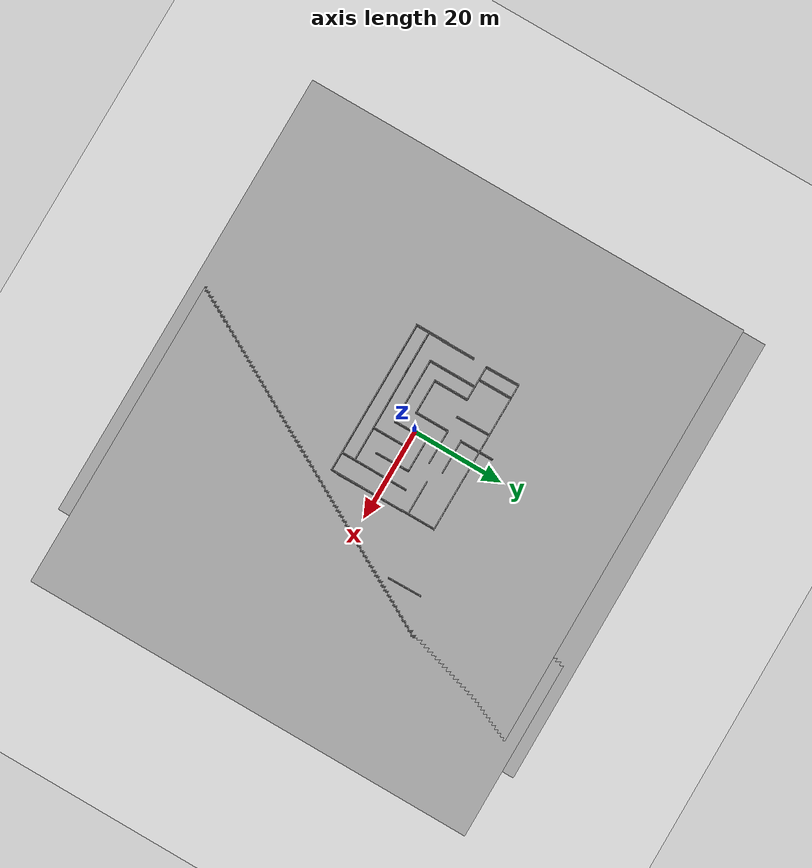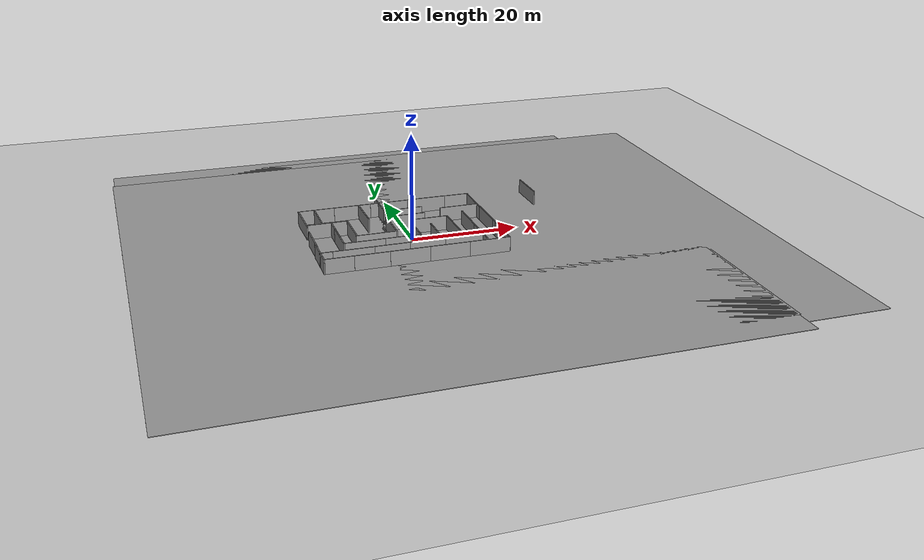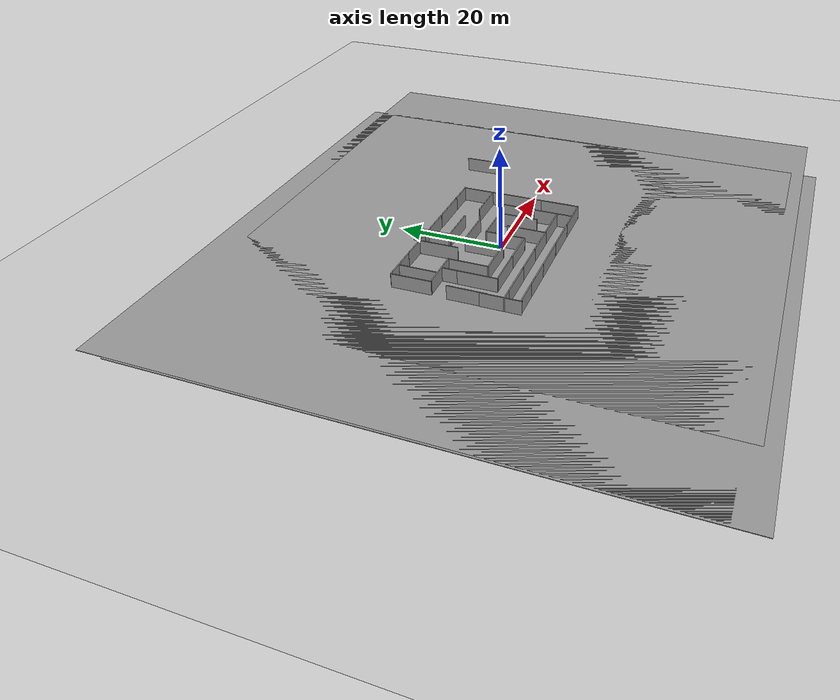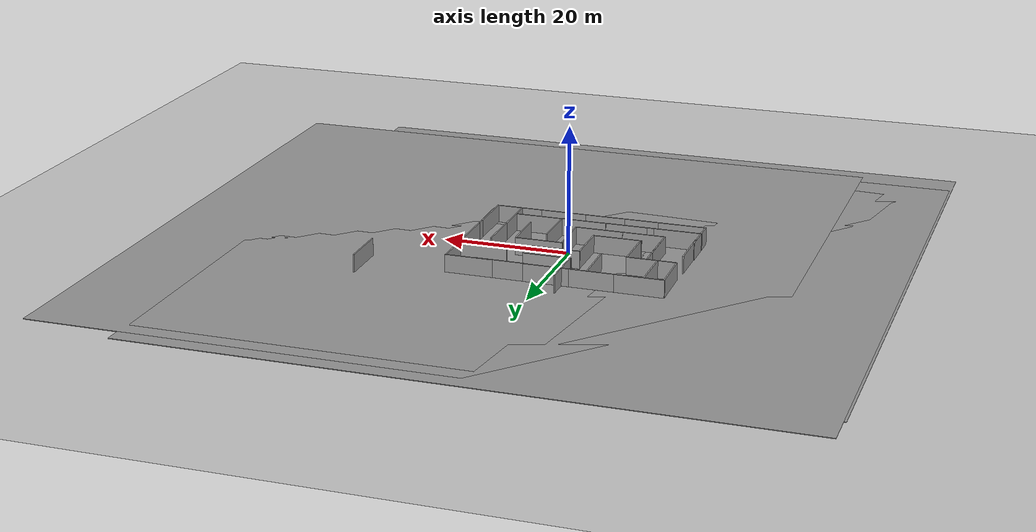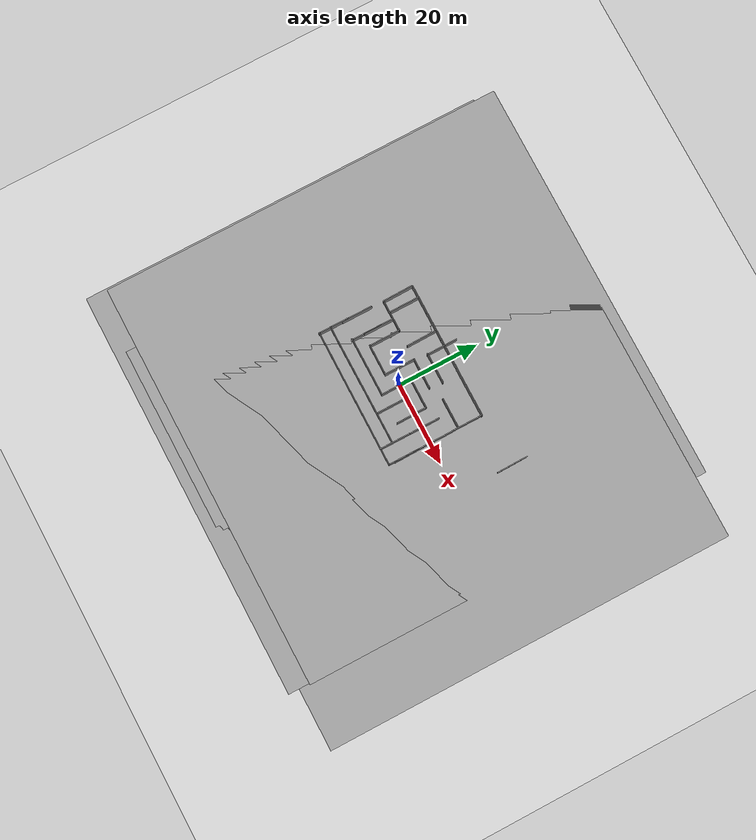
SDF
<sdf version="1.7">
 <world name="default">
  <light name="sun" type="directional">
   <pose>0 0 10 0 -0 0</pose>
   <diffuse>0.8 0.8 0.8 1</diffuse>
   <specular>0.2 0.2 0.2 1</specular>
   <attenuation>
    <range>1000</range>
    <constant>0.9</constant>
    <linear>0.01</linear>
    <quadratic>0.001</quadratic>
   </attenuation>
   <direction>-0.5 0.1 -0.9</direction>
   <spot><inner_angle>0</inner_angle><outer_angle>0</outer_angle><falloff>0</falloff></spot>
  </light>
  <model name="ground_plane">
   <static>1</static>
   <link name="link">
    <collision name="collision">
     <geometry><plane><normal>0 0 1</normal><size>100 100</size></plane></geometry>
     <surface><friction><ode><mu>100</mu><mu2>50</mu2></ode></friction></surface>
    </collision>
    <visual name="visual">
     <cast_shadows>0</cast_shadows>
     <geometry><plane><normal>0 0 1</normal><size>100 100</size></plane></geometry>
     <material>
      <script><uri>file://media/materials/scripts/gazebo.material</uri><name>Gazebo/Grey</name></script>
     </material>
    </visual>
   </link>
  </model>
  <physics name="default_physics" default="0" type="ode">
   <ode>
    <solver>
     <type>quick</type>
     <iters>10</iters>
     <sor>1.3</sor>
     <use_dynamic_moi_rescaling>0</use_dynamic_moi_rescaling>
    </solver>
    <constraints>
     <cfm>0</cfm>
     <erp>0.2</erp>
     <contact_max_correcting_vel>100</contact_max_correcting_vel>
     <contact_surface_layer>0.001</contact_surface_layer>
    </constraints>
   </ode>
   <max_step_size>0.004</max_step_size>
   <real_time_factor>1</real_time_factor>
   <real_time_update_rate>250</real_time_update_rate>
  </physics>
  <model name="grey_wall">
   <static>1</static>
   <link name="link">
    <pose>0 0 1.4 0 -0 0</pose>
    <collision name="collision"><geometry><box><size>7.5 0.2 2.8</size></box></geometry></collision>
    <visual name="visual">
     <cast_shadows>0</cast_shadows>
     <geometry><box><size>7.5 0.2 2.8</size></box></geometry>
     <material>
      <script>
       <uri>model://grey_wall/materials/scripts</uri>
       <uri>model://grey_wall/materials/textures</uri>
       <name>vrc/grey_wall</name>
      </script>
     </material>
    </visual>
   </link>
   <pose>14.9551 2.05959 0 0 0 -1.57</pose>
  </model>
  <model name="grey_wall2">
   <static>1</static>
   <link name="link">
    <pose>0 0 1.4 0 -0 0</pose>
    <collision name="collision"><geometry><box><size>7.5 0.2 2.8</size></box></geometry></collision>
    <visual name="visual">
     <cast_shadows>0</cast_shadows>
     <geometry><box><size>7.5 0.2 2.8</size></box></geometry>
     <material>
      <script>
       <uri>model://grey_wall/materials/scripts</uri>
       <uri>model://grey_wall/materials/textures</uri>
       <name>vrc/grey_wall</name>
      </script>
     </material>
    </visual>
   </link>
   <pose>-7.8442 13.1925 0 0 -0 0</pose>
  </model>
  <gravity>0 0 -9.8066</gravity>
  <magnetic_field>6e-06 2.3e-05 -4.2e-05</magnetic_field>
  <atmosphere type="adiabatic"/>
  <scene><ambient>0.4 0.4 0.4 1</ambient><background>0.7 0.7 0.7 1</background><shadows>1</shadows></scene>
  <audio><device>default</device></audio>
  <spherical_coordinates>
   <surface_model>EARTH_WGS84</surface_model>
   <latitude_deg>0</latitude_deg>
   <longitude_deg>0</longitude_deg>
   <elevation>0</elevation>
   <heading_deg>0</heading_deg>
  </spherical_coordinates>
  <model name="ground_plane_0">
   <static>1</static>
   <link name="link">
    <collision name="collision">
     <geometry><plane><normal>0 0 1</normal><size>100 100</size></plane></geometry>
     <surface><friction><ode><mu>100</mu><mu2>50</mu2></ode></friction></surface>
    </collision>
    <visual name="visual">
     <cast_shadows>0</cast_shadows>
     <geometry><plane><normal>0 0 1</normal><size>100 100</size></plane></geometry>
     <material>
      <script><uri>file://media/materials/scripts/gazebo.material</uri><name>Gazebo/Grey</name></script>
     </material>
    </visual>
   </link>
   <pose>-0.464511 1.60165 0 0 -0 0</pose>
  </model>
  <model name="grey_wall_1">
   <static>1</static>
   <link name="link">
    <pose>0 0 1.4 0 -0 0</pose>
    <collision name="collision"><geometry><box><size>7.5 0.2 2.8</size></box></geometry></collision>
    <visual name="visual">
     <cast_shadows>0</cast_shadows>
     <geometry><box><size>7.5 0.2 2.8</size></box></geometry>
     <material>
      <script>
       <uri>model://grey_wall/materials/scripts</uri>
       <uri>model://grey_wall/materials/textures</uri>
       <name>vrc/grey_wall</name>
      </script>
     </material>
    </visual>
   </link>
   <pose>0.28063 5.66889 0.02117 0 -0 0</pose>
  </model>
  <model name="ground_plane_1">
   <static>1</static>
   <link name="link">
    <collision name="collision">
     <geometry><plane><normal>0 0 1</normal><size>100 100</size></plane></geometry>
     <surface><friction><ode><mu>100</mu><mu2>50</mu2></ode></friction></surface>
    </collision>
    <visual name="visual">
     <cast_shadows>0</cast_shadows>
     <geometry><plane><normal>0 0 1</normal><size>100 100</size></plane></geometry>
     <material>
      <script><uri>file://media/materials/scripts/gazebo.material</uri><name>Gazebo/Grey</name></script>
     </material>
    </visual>
   </link>
   <pose>-0.823568 -3.4952 0 0 -0 0</pose>
  </model>
  <model name="grey_wall_0">
   <static>1</static>
   <link name="link">
    <pose>0 0 1.4 0 -0 0</pose>
    <collision name="collision"><geometry><box><size>7.5 0.2 2.8</size></box></geometry></collision>
    <visual name="visual">
     <cast_shadows>0</cast_shadows>
     <geometry><box><size>7.5 0.2 2.8</size></box></geometry>
     <material>
      <script>
       <uri>model://grey_wall/materials/scripts</uri>
       <uri>model://grey_wall/materials/textures</uri>
       <name>vrc/grey_wall</name>
      </script>
     </material>
    </visual>
   </link>
   <pose>-18.3431 9.47425 0 0 0 -1.5556</pose>
  </model>
  <model name="grey_wall_clone">
   <static>1</static>
   <link name="link">
    <pose>0 0 1.4 0 -0 0</pose>
    <collision name="collision"><geometry><box><size>7.5 0.2 2.8</size></box></geometry></collision>
    <visual name="visual">
     <cast_shadows>0</cast_shadows>
     <geometry><box><size>7.5 0.2 2.8</size></box></geometry>
     <material>
      <script>
       <uri>model://grey_wall/materials/scripts</uri>
       <uri>model://grey_wall/materials/textures</uri>
       <name>vrc/grey_wall</name>
      </script>
     </material>
    </visual>
   </link>
   <pose>3.51845 -3.70048 0 0 0 -1.57</pose>
  </model>
  <model name="grey_wall_clone_0">
   <static>1</static>
   <link name="link">
    <pose>0 0 1.4 0 -0 0</pose>
    <collision name="collision"><geometry><box><size>7.5 0.2 2.8</size></box></geometry></collision>
    <visual name="visual">
     <cast_shadows>0</cast_shadows>
     <geometry><box><size>7.5 0.2 2.8</size></box></geometry>
     <material>
      <script>
       <uri>model://grey_wall/materials/scripts</uri>
       <uri>model://grey_wall/materials/textures</uri>
       <name>vrc/grey_wall</name>
      </script>
     </material>
    </visual>
   </link>
   <pose>14.9474 -6.7391 0 0 0 -1.57</pose>
  </model>
  <model name="grey_wall2_clone">
   <static>1</static>
   <link name="link">
    <pose>0 0 1.4 0 -0 0</pose>
    <collision name="collision"><geometry><box><size>7.5 0.2 2.8</size></box></geometry></collision>
    <visual name="visual">
     <cast_shadows>0</cast_shadows>
     <geometry><box><size>7.5 0.2 2.8</size></box></geometry>
     <material>
      <script>
       <uri>model://grey_wall/materials/scripts</uri>
       <uri>model://grey_wall/materials/textures</uri>
       <name>vrc/grey_wall</name>
      </script>
     </material>
    </visual>
   </link>
   <pose>11.3177 13.1553 0 0 -0 0</pose>
  </model>
  <model name="grey_wall_clone_clone">
   <static>1</static>
   <link name="link">
    <pose>0 0 1.4 0 -0 0</pose>
    <collision name="collision"><geometry><box><size>7.5 0.2 2.8</size></box></geometry></collision>
    <visual name="visual">
     <cast_shadows>0</cast_shadows>
     <geometry><box><size>7.5 0.2 2.8</size></box></geometry>
     <material>
      <script>
       <uri>model://grey_wall/materials/scripts</uri>
       <uri>model://grey_wall/materials/textures</uri>
       <name>vrc/grey_wall</name>
      </script>
     </material>
    </visual>
   </link>
   <pose>-13.7285 2.11301 0 0 0 -1.57</pose>
  </model>
  <model name="grey_wall_clone_clone_0">
   <static>1</static>
   <link name="link">
    <pose>0 0 1.4 0 -0 0</pose>
    <collision name="collision"><geometry><box><size>7.5 0.2 2.8</size></box></geometry></collision>
    <visual name="visual">
     <cast_shadows>0</cast_shadows>
     <geometry><box><size>7.5 0.2 2.8</size></box></geometry>
     <material>
      <script>
       <uri>model://grey_wall/materials/scripts</uri>
       <uri>model://grey_wall/materials/textures</uri>
       <name>vrc/grey_wall</name>
      </script>
     </material>
    </visual>
   </link>
   <pose>-2.92535 12.4984 0 0 0 -1.57</pose>
  </model>
  <model name="grey_wall_clone_clone_1">
   <static>1</static>
   <link name="link">
    <pose>0 0 1.4 0 -0 0</pose>
    <collision name="collision"><geometry><box><size>7.5 0.2 2.8</size></box></geometry></collision>
    <visual name="visual">
     <cast_shadows>0</cast_shadows>
     <geometry><box><size>7.5 0.2 2.8</size></box></geometry>
     <material>
      <script>
       <uri>model://grey_wall/materials/scripts</uri>
       <uri>model://grey_wall/materials/textures</uri>
       <name>vrc/grey_wall</name>
      </script>
     </material>
    </visual>
   </link>
   <pose>10.9636 0.688063 0 0 0 -1.57</pose>
  </model>
  <model name="grey_wall_clone_clone_2">
   <static>1</static>
   <link name="link">
    <pose>0 0 1.4 0 -0 0</pose>
    <collision name="collision"><geometry><box><size>7.5 0.2 2.8</size></box></geometry></collision>
    <visual name="visual">
     <cast_shadows>0</cast_shadows>
     <geometry><box><size>7.5 0.2 2.8</size></box></geometry>
     <material>
      <script>
       <uri>model://grey_wall/materials/scripts</uri>
       <uri>model://grey_wall/materials/textures</uri>
       <name>vrc/grey_wall</name>
      </script>
     </material>
    </visual>
   </link>
   <pose>14.8784 9.31723 0 0 0 -1.57</pose>
  </model>
  <model name="grey_wall2_clone_clone">
   <static>1</static>
   <link name="link">
    <pose>0 0 1.4 0 -0 0</pose>
    <collision name="collision"><geometry><box><size>7.5 0.2 2.8</size></box></geometry></collision>
    <visual name="visual">
     <cast_shadows>0</cast_shadows>
     <geometry><box><size>7.5 0.2 2.8</size></box></geometry>
     <material>
      <script>
       <uri>model://grey_wall/materials/scripts</uri>
       <uri>model://grey_wall/materials/textures</uri>
       <name>vrc/grey_wall</name>
      </script>
     </material>
    </visual>
   </link>
   <pose>-0.814881 13.1804 0 0 -0 0</pose>
  </model>
  <model name="grey_wall2_clone_clone_0">
   <static>1</static>
   <link name="link">
    <pose>0 0 1.4 0 -0 0</pose>
    <collision name="collision"><geometry><box><size>7.5 0.2 2.8</size></box></geometry></collision>
    <visual name="visual">
     <cast_shadows>0</cast_shadows>
     <geometry><box><size>7.5 0.2 2.8</size></box></geometry>
     <material>
      <script>
       <uri>model://grey_wall/materials/scripts</uri>
       <uri>model://grey_wall/materials/textures</uri>
       <name>vrc/grey_wall</name>
      </script>
     </material>
    </visual>
   </link>
   <pose>6.54043 13.1498 0.03026 0 -0 0</pose>
  </model>
  <model name="grey_wall2_clone_clone_1">
   <static>1</static>
   <link name="link">
    <pose>0 0 1.4 0 -0 0</pose>
    <collision name="collision"><geometry><box><size>7.5 0.2 2.8</size></box></geometry></collision>
    <visual name="visual">
     <cast_shadows>0</cast_shadows>
     <geometry><box><size>7.5 0.2 2.8</size></box></geometry>
     <material>
      <script>
       <uri>model://grey_wall/materials/scripts</uri>
       <uri>model://grey_wall/materials/textures</uri>
       <name>vrc/grey_wall</name>
      </script>
     </material>
    </visual>
   </link>
   <pose>-3.19351 -10.3671 0 0 -0 0</pose>
  </model>
  <model name="grey_wall2_clone_clone_2">
   <static>1</static>
   <link name="link">
    <pose>0 0 1.4 0 -0 0</pose>
    <collision name="collision"><geometry><box><size>7.5 0.2 2.8</size></box></geometry></collision>
    <visual name="visual">
     <cast_shadows>0</cast_shadows>
     <geometry><box><size>7.5 0.2 2.8</size></box></geometry>
     <material>
      <script>
       <uri>model://grey_wall/materials/scripts</uri>
       <uri>model://grey_wall/materials/textures</uri>
       <name>vrc/grey_wall</name>
      </script>
     </material>
    </visual>
   </link>
   <pose>-14.8822 -10.3456 0 0 -0 0</pose>
  </model>
  <model name="ground_plane_2">
   <static>1</static>
   <link name="link">
    <collision name="collision">
     <geometry><plane><normal>0 0 1</normal><size>100 100</size></plane></geometry>
     <surface><friction><ode><mu>100</mu><mu2>50</mu2></ode></friction></surface>
    </collision>
    <visual name="visual">
     <cast_shadows>0</cast_shadows>
     <geometry><plane><normal>0 0 1</normal><size>100 100</size></plane></geometry>
     <material>
      <script><uri>file://media/materials/scripts/gazebo.material</uri><name>Gazebo/Grey</name></script>
     </material>
    </visual>
   </link>
   <pose>14.3028 -0.922524 0 0 -0 0</pose>
  </model>
  <model name="robocup_3d_field">
   <static>1</static>
   <link name="field">
    <pose>0 0 0.01 0 -0 0</pose>
    <collision name="collision">
     <geometry><plane><normal>0 0 1</normal><size>30 20</size></plane></geometry>
     <surface><friction><ode><mu>100</mu><mu2>50</mu2></ode></friction></surface>
    </collision>
    <visual name="base1">
     <pose>0 11 0.001 0 -0 0</pose>
     <cast_shadows>0</cast_shadows>
     <geometry><plane><normal>0 0 1</normal><size>34 2</size></plane></geometry>
     <material>
      <script>
       <uri>model://robocup_3Dsim_field/materials/scripts/</uri>
       <uri>model://robocup_3Dsim_field/materials/textures/</uri>
       <name>RoboCup/FieldBorder</name>
      </script>
     </material>
    </visual>
    <visual name="base2">
     <pose>0 -11 0.001 0 -0 0</pose>
     <cast_shadows>0</cast_shadows>
     <geometry><plane><normal>0 0 1</normal><size>34 2</size></plane></geometry>
     <material>
      <script>
       <uri>model://robocup_3Dsim_field/materials/scripts/</uri>
       <uri>model://robocup_3Dsim_field/materials/textures/</uri>
       <name>RoboCup/FieldBorder</name>
      </script>
     </material>
    </visual>
    <visual name="base3">
     <pose>16 0 0.001 0 -0 0</pose>
     <cast_shadows>0</cast_shadows>
     <geometry><plane><normal>0 0 1</normal><size>2 20</size></plane></geometry>
     <material>
      <script>
       <uri>model://robocup_3Dsim_field/materials/scripts/</uri>
       <uri>model://robocup_3Dsim_field/materials/textures/</uri>
       <name>RoboCup/FieldBorder</name>
      </script>
     </material>
    </visual>
    <visual name="base4">
     <pose>-16 0 0.001 0 -0 0</pose>
     <cast_shadows>0</cast_shadows>
     <geometry><plane><normal>0 0 1</normal><size>2 20</size></plane></geometry>
     <material>
      <script>
       <uri>model://robocup_3Dsim_field/materials/scripts/</uri>
       <uri>model://robocup_3Dsim_field/materials/textures/</uri>
       <name>RoboCup/FieldBorder</name>
      </script>
     </material>
    </visual>
    <visual name="carpet">
     <cast_shadows>0</cast_shadows>
     <geometry><plane><normal>0 0 1</normal><size>30 20</size></plane></geometry>
     <material>
      <script>
       <uri>model://robocup_3Dsim_field/materials/scripts/</uri>
       <uri>model://robocup_3Dsim_field/materials/textures/</uri>
       <name>RoboCup/Grass</name>
      </script>
     </material>
    </visual>
   </link>
   <pose>-1.73085 1.42275 0 0 -0 0</pose>
  </model>
  <model name="grey_wall_clone_clone_2_clone">
   <static>1</static>
   <link name="link">
    <pose>0 0 1.4 0 -0 0</pose>
    <collision name="collision"><geometry><box><size>7.5 0.2 2.8</size></box></geometry></collision>
    <visual name="visual">
     <cast_shadows>0</cast_shadows>
     <geometry><box><size>7.5 0.2 2.8</size></box></geometry>
     <material>
      <script>
       <uri>model://grey_wall/materials/scripts</uri>
       <uri>model://grey_wall/materials/textures</uri>
       <name>vrc/grey_wall</name>
      </script>
     </material>
    </visual>
   </link>
   <pose>-3.38793 1.97665 0 0 0 -1.57</pose>
  </model>
  <model name="grey_wall_clone_clone_2_clone_0">
   <static>1</static>
   <link name="link">
    <pose>0 0 1.4 0 -0 0</pose>
    <collision name="collision"><geometry><box><size>7.5 0.2 2.8</size></box></geometry></collision>
    <visual name="visual">
     <cast_shadows>0</cast_shadows>
     <geometry><box><size>7.5 0.2 2.8</size></box></geometry>
     <material>
      <script>
       <uri>model://grey_wall/materials/scripts</uri>
       <uri>model://grey_wall/materials/textures</uri>
       <name>vrc/grey_wall</name>
      </script>
     </material>
    </visual>
   </link>
   <pose>-18.4949 -0.854226 0 0 0 -1.57</pose>
  </model>
  <model name="grey_wall_clone_clone_2_clone_1">
   <static>1</static>
   <link name="link">
    <pose>0 0 1.4 0 -0 0</pose>
    <collision name="collision"><geometry><box><size>7.5 0.2 2.8</size></box></geometry></collision>
    <visual name="visual">
     <cast_shadows>0</cast_shadows>
     <geometry><box><size>7.5 0.2 2.8</size></box></geometry>
     <material>
      <script>
       <uri>model://grey_wall/materials/scripts</uri>
       <uri>model://grey_wall/materials/textures</uri>
       <name>vrc/grey_wall</name>
      </script>
     </material>
    </visual>
   </link>
   <pose>-18.5718 -6.80642 0 0 0 -1.57</pose>
  </model>
  <model name="grey_wall2_clone_clone_1_clone">
   <static>1</static>
   <link name="link">
    <pose>0 0 1.4 0 -0 0</pose>
    <collision name="collision"><geometry><box><size>7.5 0.2 2.8</size></box></geometry></collision>
    <visual name="visual">
     <cast_shadows>0</cast_shadows>
     <geometry><box><size>7.5 0.2 2.8</size></box></geometry>
     <material>
      <script>
       <uri>model://grey_wall/materials/scripts</uri>
       <uri>model://grey_wall/materials/textures</uri>
       <name>vrc/grey_wall</name>
      </script>
     </material>
    </visual>
   </link>
   <pose>-9.55626 -10.3656 0 0 -0 0</pose>
  </model>
  <model name="grey_wall_clone_clone_2_clone_clone">
   <static>1</static>
   <link name="link">
    <pose>0 0 1.4 0 -0 0</pose>
    <collision name="collision"><geometry><box><size>7.5 0.2 2.8</size></box></geometry></collision>
    <visual name="visual">
     <cast_shadows>0</cast_shadows>
     <geometry><box><size>7.5 0.2 2.8</size></box></geometry>
     <material>
      <script>
       <uri>model://grey_wall/materials/scripts</uri>
       <uri>model://grey_wall/materials/textures</uri>
       <name>vrc/grey_wall</name>
      </script>
     </material>
    </visual>
   </link>
   <pose>-15.385 9.49012 0 0 0 -1.57</pose>
  </model>
  <model name="grey_wall_0_clone">
   <static>1</static>
   <link name="link">
    <pose>0 0 1.4 0 -0 0</pose>
    <collision name="collision"><geometry><box><size>7.5 0.2 2.8</size></box></geometry></collision>
    <visual name="visual">
     <cast_shadows>0</cast_shadows>
     <geometry><box><size>7.5 0.2 2.8</size></box></geometry>
     <material>
      <script>
       <uri>model://grey_wall/materials/scripts</uri>
       <uri>model://grey_wall/materials/textures</uri>
       <name>vrc/grey_wall</name>
      </script>
     </material>
    </visual>
   </link>
   <pose>15.0092 -5.27414 0 0 0 -1.5556</pose>
  </model>
  <model name="grey_wall_0_clone_0">
   <static>1</static>
   <link name="link">
    <pose>0 0 1.4 0 -0 0</pose>
    <collision name="collision"><geometry><box><size>7.5 0.2 2.8</size></box></geometry></collision>
    <visual name="visual">
     <cast_shadows>0</cast_shadows>
     <geometry><box><size>7.5 0.2 2.8</size></box></geometry>
     <material>
      <script>
       <uri>model://grey_wall/materials/scripts</uri>
       <uri>model://grey_wall/materials/textures</uri>
       <name>vrc/grey_wall</name>
      </script>
     </material>
    </visual>
   </link>
   <pose>27.7694 13.9054 0 0 0 -1.5556</pose>
  </model>
  <model name="grey_wall_0_clone_1">
   <static>1</static>
   <link name="link">
    <pose>0 0 1.4 0 -0 0</pose>
    <collision name="collision"><geometry><box><size>7.5 0.2 2.8</size></box></geometry></collision>
    <visual name="visual">
     <cast_shadows>0</cast_shadows>
     <geometry><box><size>7.5 0.2 2.8</size></box></geometry>
     <material>
      <script>
       <uri>model://grey_wall/materials/scripts</uri>
       <uri>model://grey_wall/materials/textures</uri>
       <name>vrc/grey_wall</name>
      </script>
     </material>
    </visual>
   </link>
   <pose>7.53092 -0.749632 0 0 0 -1.5556</pose>
  </model>
  <model name="grey_wall_0_clone_2">
   <static>1</static>
   <link name="link">
    <pose>0 0 1.4 0 -0 0</pose>
    <collision name="collision"><geometry><box><size>7.5 0.2 2.8</size></box></geometry></collision>
    <visual name="visual">
     <cast_shadows>0</cast_shadows>
     <geometry><box><size>7.5 0.2 2.8</size></box></geometry>
     <material>
      <script>
       <uri>model://grey_wall/materials/scripts</uri>
       <uri>model://grey_wall/materials/textures</uri>
       <name>vrc/grey_wall</name>
      </script>
     </material>
    </visual>
   </link>
   <pose>0.261928 -0.791678 0 0 0 -1.5556</pose>
  </model>
  <model name="grey_wall_0_clone_3">
   <static>1</static>
   <link name="link">
    <pose>0 0 1.4 0 -0 0</pose>
    <collision name="collision"><geometry><box><size>7.5 0.2 2.8</size></box></geometry></collision>
    <visual name="visual">
     <cast_shadows>0</cast_shadows>
     <geometry><box><size>7.5 0.2 2.8</size></box></geometry>
     <material>
      <script>
       <uri>model://grey_wall/materials/scripts</uri>
       <uri>model://grey_wall/materials/textures</uri>
       <name>vrc/grey_wall</name>
      </script>
     </material>
    </visual>
   </link>
   <pose>-6.79686 9.44409 0 0 0 -1.5556</pose>
  </model>
  <model name="grey_wall2_clone_clone_0_clone">
   <static>1</static>
   <link name="link">
    <pose>0 0 1.4 0 -0 0</pose>
    <collision name="collision"><geometry><box><size>7.5 0.2 2.8</size></box></geometry></collision>
    <visual name="visual">
     <cast_shadows>0</cast_shadows>
     <geometry><box><size>7.5 0.2 2.8</size></box></geometry>
     <material>
      <script>
       <uri>model://grey_wall/materials/scripts</uri>
       <uri>model://grey_wall/materials/textures</uri>
       <name>vrc/grey_wall</name>
      </script>
     </material>
    </visual>
   </link>
   <pose>0.620783 8.92312 0 0 -0 0</pose>
  </model>
  <model name="grey_wall2_clone_clone_0_clone_0">
   <static>1</static>
   <link name="link">
    <pose>0 0 1.4 0 -0 0</pose>
    <collision name="collision"><geometry><box><size>7.5 0.2 2.8</size></box></geometry></collision>
    <visual name="visual">
     <cast_shadows>0</cast_shadows>
     <geometry><box><size>7.5 0.2 2.8</size></box></geometry>
     <material>
      <script>
       <uri>model://grey_wall/materials/scripts</uri>
       <uri>model://grey_wall/materials/textures</uri>
       <name>vrc/grey_wall</name>
      </script>
     </material>
    </visual>
   </link>
   <pose>11.2174 7.16559 0 0 -0 0</pose>
  </model>
  <model name="grey_wall2_clone_clone_0_clone_1">
   <static>1</static>
   <link name="link">
    <pose>0 0 1.4 0 -0 0</pose>
    <collision name="collision"><geometry><box><size>7.5 0.2 2.8</size></box></geometry></collision>
    <visual name="visual">
     <cast_shadows>0</cast_shadows>
     <geometry><box><size>7.5 0.2 2.8</size></box></geometry>
     <material>
      <script>
       <uri>model://grey_wall/materials/scripts</uri>
       <uri>model://grey_wall/materials/textures</uri>
       <name>vrc/grey_wall</name>
      </script>
     </material>
    </visual>
   </link>
   <pose>4.00163 -10.3793 0 0 -0 0</pose>
  </model>
  <model name="grey_wall2_clone_clone_0_clone_2">
   <static>1</static>
   <link name="link">
    <pose>0 0 1.4 0 -0 0</pose>
    <collision name="collision"><geometry><box><size>7.5 0.2 2.8</size></box></geometry></collision>
    <visual name="visual">
     <cast_shadows>0</cast_shadows>
     <geometry><box><size>7.5 0.2 2.8</size></box></geometry>
     <material>
      <script>
       <uri>model://grey_wall/materials/scripts</uri>
       <uri>model://grey_wall/materials/textures</uri>
       <name>vrc/grey_wall</name>
      </script>
     </material>
    </visual>
   </link>
   <pose>11.2527 -10.3893 0 0 -0 0</pose>
  </model>
  <model name="grey_wall2_clone_clone_0_clone_3">
   <static>1</static>
   <link name="link">
    <pose>0 0 1.4 0 -0 0</pose>
    <collision name="collision"><geometry><box><size>7.5 0.2 2.8</size></box></geometry></collision>
    <visual name="visual">
     <cast_shadows>0</cast_shadows>
     <geometry><box><size>7.5 0.2 2.8</size></box></geometry>
     <material>
      <script>
       <uri>model://grey_wall/materials/scripts</uri>
       <uri>model://grey_wall/materials/textures</uri>
       <name>vrc/grey_wall</name>
      </script>
     </material>
    </visual>
   </link>
   <pose>-14.6892 13.2022 0 0 -0 0</pose>
  </model>
  <model name="grey_wall2_clone_clone_0_clone_0_clone">
   <static>1</static>
   <link name="link">
    <pose>0 0 1.4 0 -0 0</pose>
    <collision name="collision"><geometry><box><size>7.5 0.2 2.8</size></box></geometry></collision>
    <visual name="visual">
     <cast_shadows>0</cast_shadows>
     <geometry><box><size>7.5 0.2 2.8</size></box></geometry>
     <material>
      <script>
       <uri>model://grey_wall/materials/scripts</uri>
       <uri>model://grey_wall/materials/textures</uri>
       <name>vrc/grey_wall</name>
      </script>
     </material>
    </visual>
   </link>
   <pose>-10.0335 -4.45423 0 0 -0 0</pose>
  </model>
  <model name="grey_wall2_clone_clone_0_clone_0_clone_0">
   <static>1</static>
   <link name="link">
    <pose>0 0 1.4 0 -0 0</pose>
    <collision name="collision"><geometry><box><size>7.5 0.2 2.8</size></box></geometry></collision>
    <visual name="visual">
     <cast_shadows>0</cast_shadows>
     <geometry><box><size>7.5 0.2 2.8</size></box></geometry>
     <material>
      <script>
       <uri>model://grey_wall/materials/scripts</uri>
       <uri>model://grey_wall/materials/textures</uri>
       <name>vrc/grey_wall</name>
      </script>
     </material>
    </visual>
   </link>
   <pose>-7.13434 -1.64655 0 0 -0 0</pose>
  </model>
  <model name="grey_wall2_clone_clone_0_clone_0_clone_1">
   <static>1</static>
   <link name="link">
    <pose>0 0 1.4 0 -0 0</pose>
    <collision name="collision"><geometry><box><size>7.5 0.2 2.8</size></box></geometry></collision>
    <visual name="visual">
     <cast_shadows>0</cast_shadows>
     <geometry><box><size>7.5 0.2 2.8</size></box></geometry>
     <material>
      <script>
       <uri>model://grey_wall/materials/scripts</uri>
       <uri>model://grey_wall/materials/textures</uri>
       <name>vrc/grey_wall</name>
      </script>
     </material>
    </visual>
   </link>
   <pose>-3.3845 -4.44173 0 0 -0 0</pose>
  </model>
  <model name="grey_wall2_clone_clone_0_clone_0_clone_2">
   <static>1</static>
   <link name="link">
    <pose>0 0 1.4 0 -0 0</pose>
    <collision name="collision"><geometry><box><size>7.5 0.2 2.8</size></box></geometry></collision>
    <visual name="visual">
     <cast_shadows>0</cast_shadows>
     <geometry><box><size>7.5 0.2 2.8</size></box></geometry>
     <material>
      <script>
       <uri>model://grey_wall/materials/scripts</uri>
       <uri>model://grey_wall/materials/textures</uri>
       <name>vrc/grey_wall</name>
      </script>
     </material>
    </visual>
   </link>
   <pose>3.84234 2.92148 0 0 -0 0</pose>
  </model>
  <model name="grey_wall_clone_clone_2_clone_clone_0">
   <static>1</static>
   <link name="link">
    <pose>0 0 1.4 0 -0 0</pose>
    <collision name="collision"><geometry><box><size>7.5 0.2 2.8</size></box></geometry></collision>
    <visual name="visual">
     <cast_shadows>0</cast_shadows>
     <geometry><box><size>7.5 0.2 2.8</size></box></geometry>
     <material>
      <script>
       <uri>model://grey_wall/materials/scripts</uri>
       <uri>model://grey_wall/materials/textures</uri>
       <name>vrc/grey_wall</name>
      </script>
     </material>
    </visual>
   </link>
   <pose>-10.7365 2.13673 0 0 0 -1.57</pose>
  </model>
  <model name="grey_wall_clone_clone_2_clone_clone_1">
   <static>1</static>
   <link name="link">
    <pose>0 0 1.4 0 -0 0</pose>
    <collision name="collision"><geometry><box><size>7.5 0.2 2.8</size></box></geometry></collision>
    <visual name="visual">
     <cast_shadows>0</cast_shadows>
     <geometry><box><size>7.5 0.2 2.8</size></box></geometry>
     <material>
      <script>
       <uri>model://grey_wall/materials/scripts</uri>
       <uri>model://grey_wall/materials/textures</uri>
       <name>vrc/grey_wall</name>
      </script>
     </material>
    </visual>
   </link>
   <pose>-13.7391 -0.816447 0 0 0 -1.57</pose>
  </model>
  <model name="grey_wall_clone_clone_2_clone_clone_2">
   <static>1</static>
   <link name="link">
    <pose>0 0 1.4 0 -0 0</pose>
    <collision name="collision"><geometry><box><size>7.5 0.2 2.8</size></box></geometry></collision>
    <visual name="visual">
     <cast_shadows>0</cast_shadows>
     <geometry><box><size>7.5 0.2 2.8</size></box></geometry>
     <material>
      <script>
       <uri>model://grey_wall/materials/scripts</uri>
       <uri>model://grey_wall/materials/textures</uri>
       <name>vrc/grey_wall</name>
      </script>
     </material>
    </visual>
   </link>
   <pose>10.9456 -6.60049 0 0 0 -1.57</pose>
  </model>
  <model name="grey_wall_1_clone">
   <static>1</static>
   <link name="link">
    <pose>0 0 1.4 0 -0 0</pose>
    <collision name="collision"><geometry><box><size>7.5 0.2 2.8</size></box></geometry></collision>
    <visual name="visual">
     <cast_shadows>0</cast_shadows>
     <geometry><box><size>7.5 0.2 2.8</size></box></geometry>
     <material>
      <script>
       <uri>model://grey_wall/materials/scripts</uri>
       <uri>model://grey_wall/materials/textures</uri>
       <name>vrc/grey_wall</name>
      </script>
     </material>
    </visual>
   </link>
   <pose>-14.3774 5.82895 0.02117 0 -0 0</pose>
  </model>
  <model name="grey_wall_1_clone_0">
   <static>1</static>
   <link name="link">
    <pose>0 0 1.4 0 -0 0</pose>
    <collision name="collision"><geometry><box><size>7.5 0.2 2.8</size></box></geometry></collision>
    <visual name="visual">
     <cast_shadows>0</cast_shadows>
     <geometry><box><size>7.5 0.2 2.8</size></box></geometry>
     <material>
      <script>
       <uri>model://grey_wall/materials/scripts</uri>
       <uri>model://grey_wall/materials/textures</uri>
       <name>vrc/grey_wall</name>
      </script>
     </material>
    </visual>
   </link>
   <pose>0.158334 -7.45045 0.02117 0 -0 0</pose>
  </model>
  <model name="grey_wall2_clone_clone_0_clone_0_clone_3">
   <static>1</static>
   <link name="link">
    <pose>0 0 1.4 0 -0 0</pose>
    <collision name="collision"><geometry><box><size>7.5 0.2 2.8</size></box></geometry></collision>
    <visual name="visual">
     <cast_shadows>0</cast_shadows>
     <geometry><box><size>7.5 0.2 2.8</size></box></geometry>
     <material>
      <script>
       <uri>model://grey_wall/materials/scripts</uri>
       <uri>model://grey_wall/materials/textures</uri>
       <name>vrc/grey_wall</name>
      </script>
     </material>
    </visual>
   </link>
   <pose>7.17771 -7.43055 0 0 -0 0</pose>
  </model>
  <model name="grey_wall_1_clone_0_clone">
   <static>1</static>
   <link name="link">
    <pose>0 0 1.4 0 -0 0</pose>
    <collision name="collision"><geometry><box><size>7.5 0.2 2.8</size></box></geometry></collision>
    <visual name="visual">
     <cast_shadows>0</cast_shadows>
     <geometry><box><size>7.5 0.2 2.8</size></box></geometry>
     <material>
      <script>
       <uri>model://grey_wall/materials/scripts</uri>
       <uri>model://grey_wall/materials/textures</uri>
       <name>vrc/grey_wall</name>
      </script>
     </material>
    </visual>
   </link>
   <pose>-6.37256 -7.47635 0.02117 0 -0 0</pose>
  </model>
  <model name="grey_wall_1_clone_0_clone_0">
   <static>1</static>
   <link name="link">
    <pose>0 0 1.4 0 -0 0</pose>
    <collision name="collision"><geometry><box><size>7.5 0.2 2.8</size></box></geometry></collision>
    <visual name="visual">
     <cast_shadows>0</cast_shadows>
     <geometry><box><size>7.5 0.2 2.8</size></box></geometry>
     <material>
      <script>
       <uri>model://grey_wall/materials/scripts</uri>
       <uri>model://grey_wall/materials/textures</uri>
       <name>vrc/grey_wall</name>
      </script>
     </material>
    </visual>
   </link>
   <pose>-12.7088 -7.5057 0.02117 0 -0 0</pose>
  </model>
  <model name="grey_wall_1_clone_0_clone_1">
   <static>1</static>
   <link name="link">
    <pose>0 0 1.4 0 -0 0</pose>
    <collision name="collision"><geometry><box><size>7.5 0.2 2.8</size></box></geometry></collision>
    <visual name="visual">
     <cast_shadows>0</cast_shadows>
     <geometry><box><size>7.5 0.2 2.8</size></box></geometry>
     <material>
      <script>
       <uri>model://grey_wall/materials/scripts</uri>
       <uri>model://grey_wall/materials/textures</uri>
       <name>vrc/grey_wall</name>
      </script>
     </material>
    </visual>
   </link>
   <pose>-14.9692 -7.49623 0.02117 0 -0 0</pose>
  </model>
 </world>
</sdf>
